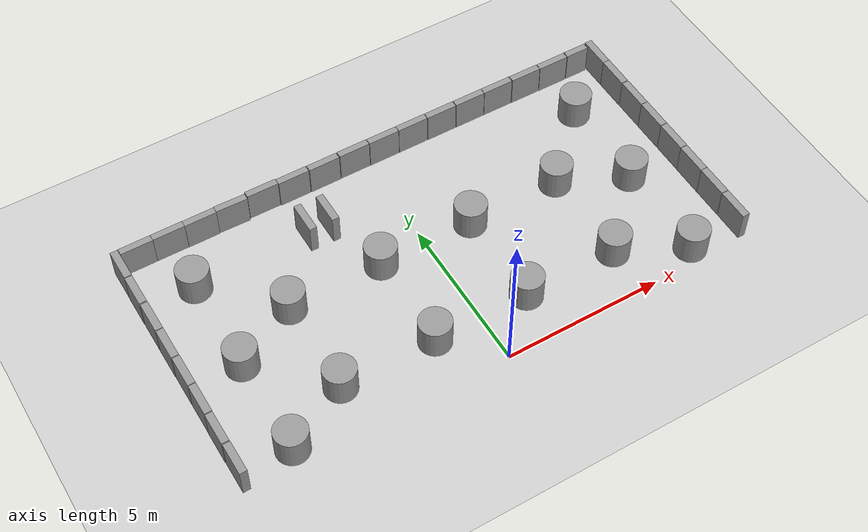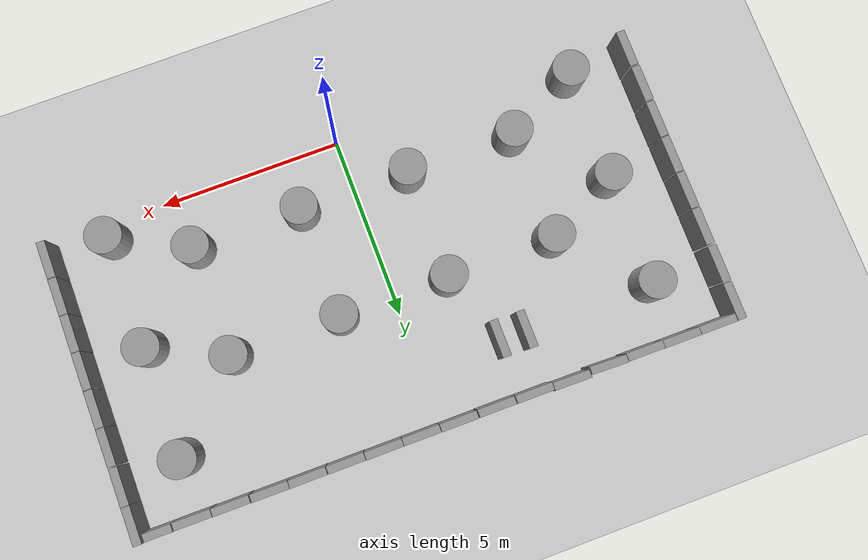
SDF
<sdf version="1.6">
 <world name="default">
  <model name="ground_plane">
   <static>1</static>
   <static>1</static>
   <link name="link">
    <collision name="collision">
     <geometry><plane><normal>0 0 1</normal><size>100 100</size></plane></geometry>
     <surface><friction><ode><mu>100</mu><mu2>50</mu2></ode></friction></surface>
    </collision>
    <visual name="visual">
     <cast_shadows>0</cast_shadows>
     <geometry><plane><normal>0 0 1</normal><size>100 100</size></plane></geometry>
     <material>
      <script><uri>file://media/materials/scripts/gazebo.material</uri><name>Gazebo/Grey</name></script>
     </material>
    </visual>
   </link>
  </model>
  <model name="unit_box_clone">
   <pose>-7.49845 8.11976 0.499999 1e-06 -2e-06 0.000246</pose>
   <link name="link">
    <inertial>
     <mass>1</mass>
     <inertia>
      <ixx>0.166667</ixx>
      <ixy>0</ixy>
      <ixz>0</ixz>
      <iyy>0.166667</iyy>
      <iyz>0</iyz>
      <izz>0.166667</izz>
     </inertia>
    </inertial>
    <collision name="collision"><geometry><box><size>1 0.210541 1</size></box></geometry></collision>
    <visual name="visual">
     <geometry><box><size>1 0.210541 1</size></box></geometry>
     <material>
      <script><name>Gazebo/Grey</name><uri>file://media/materials/scripts/gazebo.material</uri></script>
     </material>
    </visual>
   </link>
  </model>
  <model name="unit_box_clone_0">
   <pose>-6.4973 8.11962 0.499999 1e-06 -2e-06 -0.00236</pose>
   <link name="link">
    <inertial>
     <mass>1</mass>
     <inertia>
      <ixx>0.166667</ixx>
      <ixy>0</ixy>
      <ixz>0</ixz>
      <iyy>0.166667</iyy>
      <iyz>0</iyz>
      <izz>0.166667</izz>
     </inertia>
    </inertial>
    <collision name="collision"><geometry><box><size>1 0.210541 1</size></box></geometry></collision>
    <visual name="visual">
     <geometry><box><size>1 0.210541 1</size></box></geometry>
     <material>
      <script><name>Gazebo/Grey</name><uri>file://media/materials/scripts/gazebo.material</uri></script>
     </material>
    </visual>
   </link>
  </model>
  <model name="unit_box_clone_1">
   <pose>-5.49732 8.10837 0.499999 1e-06 -2e-06 -0.002352</pose>
   <link name="link">
    <inertial>
     <mass>1</mass>
     <inertia>
      <ixx>0.166667</ixx>
      <ixy>0</ixy>
      <ixz>0</ixz>
      <iyy>0.166667</iyy>
      <iyz>0</iyz>
      <izz>0.166667</izz>
     </inertia>
    </inertial>
    <collision name="collision"><geometry><box><size>1 0.210541 1</size></box></geometry></collision>
    <visual name="visual">
     <geometry><box><size>1 0.210541 1</size></box></geometry>
     <material>
      <script><name>Gazebo/Grey</name><uri>file://media/materials/scripts/gazebo.material</uri></script>
     </material>
    </visual>
   </link>
  </model>
  <model name="unit_box_clone_2">
   <pose>-4.49485 8.11079 0.499999 -1e-06 -2e-06 -0.027009</pose>
   <link name="link">
    <inertial>
     <mass>1</mass>
     <inertia>
      <ixx>0.166667</ixx>
      <ixy>0</ixy>
      <ixz>0</ixz>
      <iyy>0.166667</iyy>
      <iyz>0</iyz>
      <izz>0.166667</izz>
     </inertia>
    </inertial>
    <collision name="collision"><geometry><box><size>1 0.210541 1</size></box></geometry></collision>
    <visual name="visual">
     <geometry><box><size>1 0.210541 1</size></box></geometry>
     <material>
      <script><name>Gazebo/Grey</name><uri>file://media/materials/scripts/gazebo.material</uri></script>
     </material>
    </visual>
   </link>
  </model>
  <model name="unit_box_clone_3">
   <pose>-3.46835 8.15036 0.499999 -1e-06 2e-06 -0.007882</pose>
   <link name="link">
    <inertial>
     <mass>1</mass>
     <inertia>
      <ixx>0.166667</ixx>
      <ixy>0</ixy>
      <ixz>0</ixz>
      <iyy>0.166667</iyy>
      <iyz>0</iyz>
      <izz>0.166667</izz>
     </inertia>
    </inertial>
    <collision name="collision"><geometry><box><size>1 0.210541 1</size></box></geometry></collision>
    <visual name="visual">
     <geometry><box><size>1 0.210541 1</size></box></geometry>
     <material>
      <script><name>Gazebo/Grey</name><uri>file://media/materials/scripts/gazebo.material</uri></script>
     </material>
    </visual>
   </link>
  </model>
  <model name="unit_box_clone_4">
   <pose>-2.46316 8.11845 0.499999 1e-06 -2e-06 0.000246</pose>
   <link name="link">
    <inertial>
     <mass>1</mass>
     <inertia>
      <ixx>0.166667</ixx>
      <ixy>0</ixy>
      <ixz>0</ixz>
      <iyy>0.166667</iyy>
      <iyz>0</iyz>
      <izz>0.166667</izz>
     </inertia>
    </inertial>
    <collision name="collision"><geometry><box><size>1 0.210541 1</size></box></geometry></collision>
    <visual name="visual">
     <geometry><box><size>1 0.210541 1</size></box></geometry>
     <material>
      <script><name>Gazebo/Grey</name><uri>file://media/materials/scripts/gazebo.material</uri></script>
     </material>
    </visual>
   </link>
  </model>
  <model name="unit_box_clone_5">
   <pose>-1.44425 8.11179 0.499999 1e-06 -2e-06 0.000246</pose>
   <link name="link">
    <inertial>
     <mass>1</mass>
     <inertia>
      <ixx>0.166667</ixx>
      <ixy>0</ixy>
      <ixz>0</ixz>
      <iyy>0.166667</iyy>
      <iyz>0</iyz>
      <izz>0.166667</izz>
     </inertia>
    </inertial>
    <collision name="collision"><geometry><box><size>1 0.210541 1</size></box></geometry></collision>
    <visual name="visual">
     <geometry><box><size>1 0.210541 1</size></box></geometry>
     <material>
      <script><name>Gazebo/Grey</name><uri>file://media/materials/scripts/gazebo.material</uri></script>
     </material>
    </visual>
   </link>
  </model>
  <model name="unit_box_clone_6">
   <pose>-0.418686 8.11844 0.499999 1e-06 -2e-06 0.000246</pose>
   <link name="link">
    <inertial>
     <mass>1</mass>
     <inertia>
      <ixx>0.166667</ixx>
      <ixy>0</ixy>
      <ixz>0</ixz>
      <iyy>0.166667</iyy>
      <iyz>0</iyz>
      <izz>0.166667</izz>
     </inertia>
    </inertial>
    <collision name="collision"><geometry><box><size>1 0.210541 1</size></box></geometry></collision>
    <visual name="visual">
     <geometry><box><size>1 0.210541 1</size></box></geometry>
     <material>
      <script><name>Gazebo/Grey</name><uri>file://media/materials/scripts/gazebo.material</uri></script>
     </material>
    </visual>
   </link>
  </model>
  <model name="unit_box_clone_7">
   <pose>0.592833 8.11131 0.499999 1e-06 -2e-06 0.000246</pose>
   <link name="link">
    <inertial>
     <mass>1</mass>
     <inertia>
      <ixx>0.166667</ixx>
      <ixy>0</ixy>
      <ixz>0</ixz>
      <iyy>0.166667</iyy>
      <iyz>0</iyz>
      <izz>0.166667</izz>
     </inertia>
    </inertial>
    <collision name="collision"><geometry><box><size>1 0.210541 1</size></box></geometry></collision>
    <visual name="visual">
     <geometry><box><size>1 0.210541 1</size></box></geometry>
     <material>
      <script><name>Gazebo/Grey</name><uri>file://media/materials/scripts/gazebo.material</uri></script>
     </material>
    </visual>
   </link>
  </model>
  <model name="unit_box_clone_8">
   <pose>1.60043 8.10982 0.499999 1e-06 -2e-06 0.000246</pose>
   <link name="link">
    <inertial>
     <mass>1</mass>
     <inertia>
      <ixx>0.166667</ixx>
      <ixy>0</ixy>
      <ixz>0</ixz>
      <iyy>0.166667</iyy>
      <iyz>0</iyz>
      <izz>0.166667</izz>
     </inertia>
    </inertial>
    <collision name="collision"><geometry><box><size>1 0.210541 1</size></box></geometry></collision>
    <visual name="visual">
     <geometry><box><size>1 0.210541 1</size></box></geometry>
     <material>
      <script><name>Gazebo/Grey</name><uri>file://media/materials/scripts/gazebo.material</uri></script>
     </material>
    </visual>
   </link>
  </model>
  <model name="unit_box_clone_9">
   <pose>2.60987 8.10263 0.499999 1e-06 -2e-06 0.000246</pose>
   <link name="link">
    <inertial>
     <mass>1</mass>
     <inertia>
      <ixx>0.166667</ixx>
      <ixy>0</ixy>
      <ixz>0</ixz>
      <iyy>0.166667</iyy>
      <iyz>0</iyz>
      <izz>0.166667</izz>
     </inertia>
    </inertial>
    <collision name="collision"><geometry><box><size>1 0.210541 1</size></box></geometry></collision>
    <visual name="visual">
     <geometry><box><size>1 0.210541 1</size></box></geometry>
     <material>
      <script><name>Gazebo/Grey</name><uri>file://media/materials/scripts/gazebo.material</uri></script>
     </material>
    </visual>
   </link>
  </model>
  <model name="unit_box_clone_10">
   <pose>3.62649 8.09904 0.499999 1e-06 -2e-06 0.000246</pose>
   <link name="link">
    <inertial>
     <mass>1</mass>
     <inertia>
      <ixx>0.166667</ixx>
      <ixy>0</ixy>
      <ixz>0</ixz>
      <iyy>0.166667</iyy>
      <iyz>0</iyz>
      <izz>0.166667</izz>
     </inertia>
    </inertial>
    <collision name="collision"><geometry><box><size>1 0.210541 1</size></box></geometry></collision>
    <visual name="visual">
     <geometry><box><size>1 0.210541 1</size></box></geometry>
     <material>
      <script><name>Gazebo/Grey</name><uri>file://media/materials/scripts/gazebo.material</uri></script>
     </material>
    </visual>
   </link>
  </model>
  <model name="unit_box_clone_11">
   <pose>4.63308 8.09512 0.499999 1e-06 -2e-06 -0.003341</pose>
   <link name="link">
    <inertial>
     <mass>1</mass>
     <inertia>
      <ixx>0.166667</ixx>
      <ixy>0</ixy>
      <ixz>0</ixz>
      <iyy>0.166667</iyy>
      <iyz>0</iyz>
      <izz>0.166667</izz>
     </inertia>
    </inertial>
    <collision name="collision"><geometry><box><size>1 0.210541 1</size></box></geometry></collision>
    <visual name="visual">
     <geometry><box><size>1 0.210541 1</size></box></geometry>
     <material>
      <script><name>Gazebo/Grey</name><uri>file://media/materials/scripts/gazebo.material</uri></script>
     </material>
    </visual>
   </link>
  </model>
  <model name="unit_box_0_clone_0">
   <pose>8.11522 6.68458 0.5 0 0 -0.000202</pose>
   <link name="link">
    <inertial>
     <mass>1</mass>
     <inertia>
      <ixx>0.166667</ixx>
      <ixy>0</ixy>
      <ixz>0</ixz>
      <iyy>0.166667</iyy>
      <iyz>0</iyz>
      <izz>0.166667</izz>
     </inertia>
    </inertial>
    <collision name="collision"><geometry><box><size>0.230819 1 1</size></box></geometry></collision>
    <visual name="visual">
     <geometry><box><size>0.230819 1 1</size></box></geometry>
     <material>
      <script><name>Gazebo/Grey</name><uri>file://media/materials/scripts/gazebo.material</uri></script>
     </material>
    </visual>
   </link>
  </model>
  <model name="unit_box_0_clone_1">
   <pose>8.11915 5.6517 0.5 0 -0 0.000101</pose>
   <link name="link">
    <inertial>
     <mass>1</mass>
     <inertia>
      <ixx>0.166667</ixx>
      <ixy>0</ixy>
      <ixz>0</ixz>
      <iyy>0.166667</iyy>
      <iyz>0</iyz>
      <izz>0.166667</izz>
     </inertia>
    </inertial>
    <collision name="collision"><geometry><box><size>0.230819 1 1</size></box></geometry></collision>
    <visual name="visual">
     <geometry><box><size>0.230819 1 1</size></box></geometry>
     <material>
      <script><name>Gazebo/Grey</name><uri>file://media/materials/scripts/gazebo.material</uri></script>
     </material>
    </visual>
   </link>
  </model>
  <model name="unit_box_0_clone_2">
   <pose>8.11914 4.64016 0.5 0 -0 0.000194</pose>
   <link name="link">
    <inertial>
     <mass>1</mass>
     <inertia>
      <ixx>0.166667</ixx>
      <ixy>0</ixy>
      <ixz>0</ixz>
      <iyy>0.166667</iyy>
      <iyz>0</iyz>
      <izz>0.166667</izz>
     </inertia>
    </inertial>
    <collision name="collision"><geometry><box><size>0.230819 1 1</size></box></geometry></collision>
    <visual name="visual">
     <geometry><box><size>0.230819 1 1</size></box></geometry>
     <material>
      <script><name>Gazebo/Grey</name><uri>file://media/materials/scripts/gazebo.material</uri></script>
     </material>
    </visual>
   </link>
  </model>
  <model name="unit_box_0_clone_3">
   <pose>8.11914 3.62228 0.5 0 -0 0.000175</pose>
   <link name="link">
    <inertial>
     <mass>1</mass>
     <inertia>
      <ixx>0.166667</ixx>
      <ixy>0</ixy>
      <ixz>0</ixz>
      <iyy>0.166667</iyy>
      <iyz>0</iyz>
      <izz>0.166667</izz>
     </inertia>
    </inertial>
    <collision name="collision"><geometry><box><size>0.230819 1 1</size></box></geometry></collision>
    <visual name="visual">
     <geometry><box><size>0.230819 1 1</size></box></geometry>
     <material>
      <script><name>Gazebo/Grey</name><uri>file://media/materials/scripts/gazebo.material</uri></script>
     </material>
    </visual>
   </link>
  </model>
  <model name="unit_box_0_clone_4">
   <pose>8.11332 2.61063 0.5 -1e-06 1e-06 -0.001033</pose>
   <link name="link">
    <inertial>
     <mass>1</mass>
     <inertia>
      <ixx>0.166667</ixx>
      <ixy>0</ixy>
      <ixz>0</ixz>
      <iyy>0.166667</iyy>
      <iyz>0</iyz>
      <izz>0.166667</izz>
     </inertia>
    </inertial>
    <collision name="collision"><geometry><box><size>0.230819 1 1</size></box></geometry></collision>
    <visual name="visual">
     <geometry><box><size>0.230819 1 1</size></box></geometry>
     <material>
      <script><name>Gazebo/Grey</name><uri>file://media/materials/scripts/gazebo.material</uri></script>
     </material>
    </visual>
   </link>
  </model>
  <model name="unit_box_0_clone_5">
   <pose>8.11277 1.59919 0.5 0 -0 0.000175</pose>
   <link name="link">
    <inertial>
     <mass>1</mass>
     <inertia>
      <ixx>0.166667</ixx>
      <ixy>0</ixy>
      <ixz>0</ixz>
      <iyy>0.166667</iyy>
      <iyz>0</iyz>
      <izz>0.166667</izz>
     </inertia>
    </inertial>
    <collision name="collision"><geometry><box><size>0.230819 1 1</size></box></geometry></collision>
    <visual name="visual">
     <geometry><box><size>0.230819 1 1</size></box></geometry>
     <material>
      <script><name>Gazebo/Grey</name><uri>file://media/materials/scripts/gazebo.material</uri></script>
     </material>
    </visual>
   </link>
  </model>
  <model name="unit_box_0_clone_6">
   <pose>8.11277 0.574938 0.5 0 -0 0.000175</pose>
   <link name="link">
    <inertial>
     <mass>1</mass>
     <inertia>
      <ixx>0.166667</ixx>
      <ixy>0</ixy>
      <ixz>0</ixz>
      <iyy>0.166667</iyy>
      <iyz>0</iyz>
      <izz>0.166667</izz>
     </inertia>
    </inertial>
    <collision name="collision"><geometry><box><size>0.230819 1 1</size></box></geometry></collision>
    <visual name="visual">
     <geometry><box><size>0.230819 1 1</size></box></geometry>
     <material>
      <script><name>Gazebo/Grey</name><uri>file://media/materials/scripts/gazebo.material</uri></script>
     </material>
    </visual>
   </link>
  </model>
  <model name="unit_box_0_clone_4_clone">
   <pose>-8.12647 7.71769 0.5 0 -0 0.000175</pose>
   <link name="link">
    <inertial>
     <mass>1</mass>
     <inertia>
      <ixx>0.166667</ixx>
      <ixy>0</ixy>
      <ixz>0</ixz>
      <iyy>0.166667</iyy>
      <iyz>0</iyz>
      <izz>0.166667</izz>
     </inertia>
    </inertial>
    <collision name="collision"><geometry><box><size>0.230819 1 1</size></box></geometry></collision>
    <visual name="visual">
     <geometry><box><size>0.230819 1 1</size></box></geometry>
     <material>
      <script><name>Gazebo/Grey</name><uri>file://media/materials/scripts/gazebo.material</uri></script>
     </material>
    </visual>
   </link>
  </model>
  <model name="unit_box_0_clone_4_clone_0">
   <pose>-8.13281 6.68715 0.5 0 -0 0.000175</pose>
   <link name="link">
    <inertial>
     <mass>1</mass>
     <inertia>
      <ixx>0.166667</ixx>
      <ixy>0</ixy>
      <ixz>0</ixz>
      <iyy>0.166667</iyy>
      <iyz>0</iyz>
      <izz>0.166667</izz>
     </inertia>
    </inertial>
    <collision name="collision"><geometry><box><size>0.230819 1 1</size></box></geometry></collision>
    <visual name="visual">
     <geometry><box><size>0.230819 1 1</size></box></geometry>
     <material>
      <script><name>Gazebo/Grey</name><uri>file://media/materials/scripts/gazebo.material</uri></script>
     </material>
    </visual>
   </link>
  </model>
  <model name="unit_box_0_clone_4_clone_1">
   <pose>-8.12606 5.64722 0.5 0 -0 0.000175</pose>
   <link name="link">
    <inertial>
     <mass>1</mass>
     <inertia>
      <ixx>0.166667</ixx>
      <ixy>0</ixy>
      <ixz>0</ixz>
      <iyy>0.166667</iyy>
      <iyz>0</iyz>
      <izz>0.166667</izz>
     </inertia>
    </inertial>
    <collision name="collision"><geometry><box><size>0.230819 1 1</size></box></geometry></collision>
    <visual name="visual">
     <geometry><box><size>0.230819 1 1</size></box></geometry>
     <material>
      <script><name>Gazebo/Grey</name><uri>file://media/materials/scripts/gazebo.material</uri></script>
     </material>
    </visual>
   </link>
  </model>
  <model name="unit_box_0_clone_4_clone_2">
   <pose>-8.12607 4.6208 0.5 0 -0 0.000175</pose>
   <link name="link">
    <inertial>
     <mass>1</mass>
     <inertia>
      <ixx>0.166667</ixx>
      <ixy>0</ixy>
      <ixz>0</ixz>
      <iyy>0.166667</iyy>
      <iyz>0</iyz>
      <izz>0.166667</izz>
     </inertia>
    </inertial>
    <collision name="collision"><geometry><box><size>0.230819 1 1</size></box></geometry></collision>
    <visual name="visual">
     <geometry><box><size>0.230819 1 1</size></box></geometry>
     <material>
      <script><name>Gazebo/Grey</name><uri>file://media/materials/scripts/gazebo.material</uri></script>
     </material>
    </visual>
   </link>
  </model>
  <model name="unit_box_0_clone_4_clone_3">
   <pose>-8.11932 3.59437 0.5 0 -0 0.000175</pose>
   <link name="link">
    <inertial>
     <mass>1</mass>
     <inertia>
      <ixx>0.166667</ixx>
      <ixy>0</ixy>
      <ixz>0</ixz>
      <iyy>0.166667</iyy>
      <iyz>0</iyz>
      <izz>0.166667</izz>
     </inertia>
    </inertial>
    <collision name="collision"><geometry><box><size>0.230819 1 1</size></box></geometry></collision>
    <visual name="visual">
     <geometry><box><size>0.230819 1 1</size></box></geometry>
     <material>
      <script><name>Gazebo/Grey</name><uri>file://media/materials/scripts/gazebo.material</uri></script>
     </material>
    </visual>
   </link>
  </model>
  <model name="unit_box_0_clone_4_clone_4">
   <pose>-8.11932 2.57471 0.5 0 -0 0.000175</pose>
   <link name="link">
    <inertial>
     <mass>1</mass>
     <inertia>
      <ixx>0.166667</ixx>
      <ixy>0</ixy>
      <ixz>0</ixz>
      <iyy>0.166667</iyy>
      <iyz>0</iyz>
      <izz>0.166667</izz>
     </inertia>
    </inertial>
    <collision name="collision"><geometry><box><size>0.230819 1 1</size></box></geometry></collision>
    <visual name="visual">
     <geometry><box><size>0.230819 1 1</size></box></geometry>
     <material>
      <script><name>Gazebo/Grey</name><uri>file://media/materials/scripts/gazebo.material</uri></script>
     </material>
    </visual>
   </link>
  </model>
  <model name="unit_box_0_clone_4_clone_5">
   <pose>-8.12608 1.54157 0.5 0 -0 0.000175</pose>
   <link name="link">
    <inertial>
     <mass>1</mass>
     <inertia>
      <ixx>0.166667</ixx>
      <ixy>0</ixy>
      <ixz>0</ixz>
      <iyy>0.166667</iyy>
      <iyz>0</iyz>
      <izz>0.166667</izz>
     </inertia>
    </inertial>
    <collision name="collision"><geometry><box><size>0.230819 1 1</size></box></geometry></collision>
    <visual name="visual">
     <geometry><box><size>0.230819 1 1</size></box></geometry>
     <material>
      <script><name>Gazebo/Grey</name><uri>file://media/materials/scripts/gazebo.material</uri></script>
     </material>
    </visual>
   </link>
  </model>
  <model name="unit_box_0_clone_4_clone_6">
   <pose>-8.11933 0.50163 0.5 0 -0 0.000175</pose>
   <link name="link">
    <inertial>
     <mass>1</mass>
     <inertia>
      <ixx>0.166667</ixx>
      <ixy>0</ixy>
      <ixz>0</ixz>
      <iyy>0.166667</iyy>
      <iyz>0</iyz>
      <izz>0.166667</izz>
     </inertia>
    </inertial>
    <collision name="collision"><geometry><box><size>0.230819 1 1</size></box></geometry></collision>
    <visual name="visual">
     <geometry><box><size>0.230819 1 1</size></box></geometry>
     <material>
      <script><name>Gazebo/Grey</name><uri>file://media/materials/scripts/gazebo.material</uri></script>
     </material>
    </visual>
   </link>
  </model>
  <model name="unit_box_0_clone_0_clone">
   <pose>8.11438 7.69322 0.5 0 -0 8.3e-05</pose>
   <link name="link">
    <inertial>
     <mass>1</mass>
     <inertia>
      <ixx>0.166667</ixx>
      <ixy>0</ixy>
      <ixz>0</ixz>
      <iyy>0.166667</iyy>
      <iyz>0</iyz>
      <izz>0.166667</izz>
     </inertia>
    </inertial>
    <collision name="collision"><geometry><box><size>0.230819 1 1</size></box></geometry></collision>
    <visual name="visual">
     <geometry><box><size>0.230819 1 1</size></box></geometry>
     <material>
      <script><name>Gazebo/Grey</name><uri>file://media/materials/scripts/gazebo.material</uri></script>
     </material>
    </visual>
   </link>
  </model>
  <model name="unit_box_clone_11_clone">
   <pose>5.6544 8.08381 0.499999 -1e-06 2e-06 -0.003006</pose>
   <link name="link">
    <inertial>
     <mass>1</mass>
     <inertia>
      <ixx>0.166667</ixx>
      <ixy>0</ixy>
      <ixz>0</ixz>
      <iyy>0.166667</iyy>
      <iyz>0</iyz>
      <izz>0.166667</izz>
     </inertia>
    </inertial>
    <collision name="collision"><geometry><box><size>1 0.210541 1</size></box></geometry></collision>
    <visual name="visual">
     <geometry><box><size>1 0.210541 1</size></box></geometry>
     <material>
      <script><name>Gazebo/Grey</name><uri>file://media/materials/scripts/gazebo.material</uri></script>
     </material>
    </visual>
   </link>
  </model>
  <model name="unit_box_clone_11_clone_0">
   <pose>6.66438 8.07331 0.499999 1e-06 -2e-06 -0.003263</pose>
   <link name="link">
    <inertial>
     <mass>1</mass>
     <inertia>
      <ixx>0.166667</ixx>
      <ixy>0</ixy>
      <ixz>0</ixz>
      <iyy>0.166667</iyy>
      <iyz>0</iyz>
      <izz>0.166667</izz>
     </inertia>
    </inertial>
    <collision name="collision"><geometry><box><size>1 0.210541 1</size></box></geometry></collision>
    <visual name="visual">
     <geometry><box><size>1 0.210541 1</size></box></geometry>
     <material>
      <script><name>Gazebo/Grey</name><uri>file://media/materials/scripts/gazebo.material</uri></script>
     </material>
    </visual>
   </link>
  </model>
  <model name="unit_box_clone_11_clone_1_clone">
   <pose>7.56439 8.07324 0.499997 -3e-06 7e-06 -0.004063</pose>
   <link name="link">
    <inertial>
     <mass>1</mass>
     <inertia>
      <ixx>0.166667</ixx>
      <ixy>0</ixy>
      <ixz>0</ixz>
      <iyy>0.166667</iyy>
      <iyz>0</iyz>
      <izz>0.166667</izz>
     </inertia>
    </inertial>
    <collision name="collision"><geometry><box><size>0.750223 0.210541 1</size></box></geometry></collision>
    <visual name="visual">
     <geometry><box><size>0.750223 0.210541 1</size></box></geometry>
     <material>
      <script><name>Gazebo/Grey</name><uri>file://media/materials/scripts/gazebo.material</uri></script>
     </material>
    </visual>
   </link>
  </model>
  <model name="unit_cylinder_clone_0_clone">
   <pose>1.52056 1.49925 0.499993 -3e-06 -1e-06 -0</pose>
   <link name="link">
    <inertial>
     <mass>1</mass>
     <inertia><ixx>0.145833</ixx><ixy>0</ixy><ixz>0</ixz><iyy>0.145833</iyy><iyz>0</iyz><izz>0.125</izz></inertia>
    </inertial>
    <collision name="collision">
     <geometry><cylinder><radius>0.5</radius><length>1</length></cylinder></geometry>
    </collision>
    <visual name="visual">
     <geometry><cylinder><radius>0.5</radius><length>1</length></cylinder></geometry>
     <material>
      <script><name>Gazebo/Grey</name><uri>file://media/materials/scripts/gazebo.material</uri></script>
     </material>
    </visual>
   </link>
  </model>
  <model name="unit_cylinder_clone_0_clone_clone">
   <pose>-1.50519 1.50185 0.499997 3e-06 2e-06 0</pose>
   <link name="link">
    <inertial>
     <mass>1</mass>
     <inertia><ixx>0.145833</ixx><ixy>0</ixy><ixz>0</ixz><iyy>0.145833</iyy><iyz>0</iyz><izz>0.125</izz></inertia>
    </inertial>
    <collision name="collision">
     <geometry><cylinder><radius>0.5</radius><length>1</length></cylinder></geometry>
    </collision>
    <visual name="visual">
     <geometry><cylinder><radius>0.5</radius><length>1</length></cylinder></geometry>
     <material>
      <script><name>Gazebo/Grey</name><uri>file://media/materials/scripts/gazebo.material</uri></script>
     </material>
    </visual>
   </link>
  </model>
  <model name="unit_cylinder_clone_0_clone_clone_7">
   <pose>-4.49909 1.51312 0.499998 3e-06 -2e-06 0</pose>
   <link name="link">
    <inertial>
     <mass>1</mass>
     <inertia><ixx>0.145833</ixx><ixy>0</ixy><ixz>0</ixz><iyy>0.145833</iyy><iyz>0</iyz><izz>0.125</izz></inertia>
    </inertial>
    <collision name="collision">
     <geometry><cylinder><radius>0.5</radius><length>1</length></cylinder></geometry>
    </collision>
    <visual name="visual">
     <geometry><cylinder><radius>0.5</radius><length>1</length></cylinder></geometry>
     <material>
      <script><name>Gazebo/Grey</name><uri>file://media/materials/scripts/gazebo.material</uri></script>
     </material>
    </visual>
   </link>
  </model>
  <model name="unit_cylinder_clone_0_clone_clone_8">
   <pose>-4.49907 4.50692 0.499998 3e-06 -2e-06 0</pose>
   <link name="link">
    <inertial>
     <mass>1</mass>
     <inertia><ixx>0.145833</ixx><ixy>0</ixy><ixz>0</ixz><iyy>0.145833</iyy><iyz>0</iyz><izz>0.125</izz></inertia>
    </inertial>
    <collision name="collision">
     <geometry><cylinder><radius>0.5</radius><length>1</length></cylinder></geometry>
    </collision>
    <visual name="visual">
     <geometry><cylinder><radius>0.5</radius><length>1</length></cylinder></geometry>
     <material>
      <script><name>Gazebo/Grey</name><uri>file://media/materials/scripts/gazebo.material</uri></script>
     </material>
    </visual>
   </link>
  </model>
  <model name="unit_cylinder_clone_0_clone_clone_9">
   <pose>-1.51553 4.5274 0.499998 3e-06 -2e-06 0</pose>
   <link name="link">
    <inertial>
     <mass>1</mass>
     <inertia><ixx>0.145833</ixx><ixy>0</ixy><ixz>0</ixz><iyy>0.145833</iyy><iyz>0</iyz><izz>0.125</izz></inertia>
    </inertial>
    <collision name="collision">
     <geometry><cylinder><radius>0.5</radius><length>1</length></cylinder></geometry>
    </collision>
    <visual name="visual">
     <geometry><cylinder><radius>0.5</radius><length>1</length></cylinder></geometry>
     <material>
      <script><name>Gazebo/Grey</name><uri>file://media/materials/scripts/gazebo.material</uri></script>
     </material>
    </visual>
   </link>
  </model>
  <model name="unit_cylinder_clone_0_clone_clone_10">
   <pose>1.49876 4.51714 0.499993 -3e-06 -1e-06 -0</pose>
   <link name="link">
    <inertial>
     <mass>1</mass>
     <inertia><ixx>0.145833</ixx><ixy>0</ixy><ixz>0</ixz><iyy>0.145833</iyy><iyz>0</iyz><izz>0.125</izz></inertia>
    </inertial>
    <collision name="collision">
     <geometry><cylinder><radius>0.5</radius><length>1</length></cylinder></geometry>
    </collision>
    <visual name="visual">
     <geometry><cylinder><radius>0.5</radius><length>1</length></cylinder></geometry>
     <material>
      <script><name>Gazebo/Grey</name><uri>file://media/materials/scripts/gazebo.material</uri></script>
     </material>
    </visual>
   </link>
  </model>
  <model name="unit_cylinder_clone_0_clone_clone_11">
   <pose>4.49256 4.51712 0.499997 3e-06 1e-06 -0</pose>
   <link name="link">
    <inertial>
     <mass>1</mass>
     <inertia><ixx>0.145833</ixx><ixy>0</ixy><ixz>0</ixz><iyy>0.145833</iyy><iyz>0</iyz><izz>0.125</izz></inertia>
    </inertial>
    <collision name="collision">
     <geometry><cylinder><radius>0.5</radius><length>1</length></cylinder></geometry>
    </collision>
    <visual name="visual">
     <geometry><cylinder><radius>0.5</radius><length>1</length></cylinder></geometry>
     <material>
      <script><name>Gazebo/Grey</name><uri>file://media/materials/scripts/gazebo.material</uri></script>
     </material>
    </visual>
   </link>
  </model>
  <model name="unit_cylinder_clone_0_clone_clone_12">
   <pose>4.5031 1.49208 0.499998 3e-06 -2e-06 0</pose>
   <link name="link">
    <inertial>
     <mass>1</mass>
     <inertia><ixx>0.145833</ixx><ixy>0</ixy><ixz>0</ixz><iyy>0.145833</iyy><iyz>0</iyz><izz>0.125</izz></inertia>
    </inertial>
    <collision name="collision">
     <geometry><cylinder><radius>0.5</radius><length>1</length></cylinder></geometry>
    </collision>
    <visual name="visual">
     <geometry><cylinder><radius>0.5</radius><length>1</length></cylinder></geometry>
     <material>
      <script><name>Gazebo/Grey</name><uri>file://media/materials/scripts/gazebo.material</uri></script>
     </material>
    </visual>
   </link>
  </model>
  <model name="unit_cylinder_clone_0_clone_clone_14">
   <pose>-6.48685 6.53244 0.499993 -3e-06 -1e-06 -0</pose>
   <link name="link">
    <inertial>
     <mass>1</mass>
     <inertia><ixx>0.145833</ixx><ixy>0</ixy><ixz>0</ixz><iyy>0.145833</iyy><iyz>0</iyz><izz>0.125</izz></inertia>
    </inertial>
    <collision name="collision">
     <geometry><cylinder><radius>0.5</radius><length>1</length></cylinder></geometry>
    </collision>
    <visual name="visual">
     <geometry><cylinder><radius>0.5</radius><length>1</length></cylinder></geometry>
     <material>
      <script><name>Gazebo/Grey</name><uri>file://media/materials/scripts/gazebo.material</uri></script>
     </material>
    </visual>
   </link>
  </model>
  <model name="unit_cylinder_clone_0_clone_clone_15">
   <pose>-6.50058 3.5019 0.499997 3e-06 1e-06 -0</pose>
   <link name="link">
    <inertial>
     <mass>1</mass>
     <inertia><ixx>0.145833</ixx><ixy>0</ixy><ixz>0</ixz><iyy>0.145833</iyy><iyz>0</iyz><izz>0.125</izz></inertia>
    </inertial>
    <collision name="collision">
     <geometry><cylinder><radius>0.5</radius><length>1</length></cylinder></geometry>
    </collision>
    <visual name="visual">
     <geometry><cylinder><radius>0.5</radius><length>1</length></cylinder></geometry>
     <material>
      <script><name>Gazebo/Grey</name><uri>file://media/materials/scripts/gazebo.material</uri></script>
     </material>
    </visual>
   </link>
  </model>
  <model name="unit_cylinder_clone_0_clone_clone_16">
   <pose>-6.51431 0.485089 0.499993 -3e-06 -1e-06 -0</pose>
   <link name="link">
    <inertial>
     <mass>1</mass>
     <inertia><ixx>0.145833</ixx><ixy>0</ixy><ixz>0</ixz><iyy>0.145833</iyy><iyz>0</iyz><izz>0.125</izz></inertia>
    </inertial>
    <collision name="collision">
     <geometry><cylinder><radius>0.5</radius><length>1</length></cylinder></geometry>
    </collision>
    <visual name="visual">
     <geometry><cylinder><radius>0.5</radius><length>1</length></cylinder></geometry>
     <material>
      <script><name>Gazebo/Grey</name><uri>file://media/materials/scripts/gazebo.material</uri></script>
     </material>
    </visual>
   </link>
  </model>
  <model name="unit_cylinder_clone_0_clone_clone_19">
   <pose>6.54033 6.54608 0.499992 -3e-06 3e-06 0</pose>
   <link name="link">
    <inertial>
     <mass>1</mass>
     <inertia><ixx>0.145833</ixx><ixy>0</ixy><ixz>0</ixz><iyy>0.145833</iyy><iyz>0</iyz><izz>0.125</izz></inertia>
    </inertial>
    <collision name="collision">
     <geometry><cylinder><radius>0.5</radius><length>1</length></cylinder></geometry>
    </collision>
    <visual name="visual">
     <geometry><cylinder><radius>0.5</radius><length>1</length></cylinder></geometry>
     <material>
      <script><name>Gazebo/Grey</name><uri>file://media/materials/scripts/gazebo.material</uri></script>
     </material>
    </visual>
   </link>
  </model>
  <model name="unit_cylinder_clone_0_clone_clone_20">
   <pose>6.5266 3.55669 0.499993 -3e-06 -1e-06 -0</pose>
   <link name="link">
    <inertial>
     <mass>1</mass>
     <inertia><ixx>0.145833</ixx><ixy>0</ixy><ixz>0</ixz><iyy>0.145833</iyy><iyz>0</iyz><izz>0.125</izz></inertia>
    </inertial>
    <collision name="collision">
     <geometry><cylinder><radius>0.5</radius><length>1</length></cylinder></geometry>
    </collision>
    <visual name="visual">
     <geometry><cylinder><radius>0.5</radius><length>1</length></cylinder></geometry>
     <material>
      <script><name>Gazebo/Grey</name><uri>file://media/materials/scripts/gazebo.material</uri></script>
     </material>
    </visual>
   </link>
  </model>
  <model name="unit_cylinder_clone_0_clone_clone_21">
   <pose>6.54029 0.471305 0.499992 -3e-06 4e-06 0</pose>
   <link name="link">
    <inertial>
     <mass>1</mass>
     <inertia><ixx>0.145833</ixx><ixy>0</ixy><ixz>0</ixz><iyy>0.145833</iyy><iyz>0</iyz><izz>0.125</izz></inertia>
    </inertial>
    <collision name="collision">
     <geometry><cylinder><radius>0.5</radius><length>1</length></cylinder></geometry>
    </collision>
    <visual name="visual">
     <geometry><cylinder><radius>0.5</radius><length>1</length></cylinder></geometry>
     <material>
      <script><name>Gazebo/Grey</name><uri>file://media/materials/scripts/gazebo.material</uri></script>
     </material>
    </visual>
   </link>
  </model>
  <model name="unit_box_0_clone_4_clone_12_clone_3">
   <pose>-2.86764 6.54596 0.499997 -6e-06 -1e-06 0.000196</pose>
   <link name="link">
    <inertial>
     <mass>1</mass>
     <inertia>
      <ixx>0.166667</ixx>
      <ixy>0</ixy>
      <ixz>0</ixz>
      <iyy>0.166667</iyy>
      <iyz>0</iyz>
      <izz>0.166667</izz>
     </inertia>
    </inertial>
    <collision name="collision"><geometry><box><size>0.230819 1 1</size></box></geometry></collision>
    <visual name="visual">
     <geometry><box><size>0.230819 1 1</size></box></geometry>
     <material>
      <script><name>Gazebo/Grey</name><uri>file://media/materials/scripts/gazebo.material</uri></script>
     </material>
    </visual>
   </link>
  </model>
  <model name="unit_box_0_clone_4_clone_12_clone_4">
   <pose>-2.14337 6.53176 0.499998 5e-06 -0 0.000186</pose>
   <link name="link">
    <inertial>
     <mass>1</mass>
     <inertia>
      <ixx>0.166667</ixx>
      <ixy>0</ixy>
      <ixz>0</ixz>
      <iyy>0.166667</iyy>
      <iyz>0</iyz>
      <izz>0.166667</izz>
     </inertia>
    </inertial>
    <collision name="collision"><geometry><box><size>0.230819 1 1</size></box></geometry></collision>
    <visual name="visual">
     <geometry><box><size>0.230819 1 1</size></box></geometry>
     <material>
      <script><name>Gazebo/Grey</name><uri>file://media/materials/scripts/gazebo.material</uri></script>
     </material>
    </visual>
   </link>
  </model>
 </world>
</sdf>
